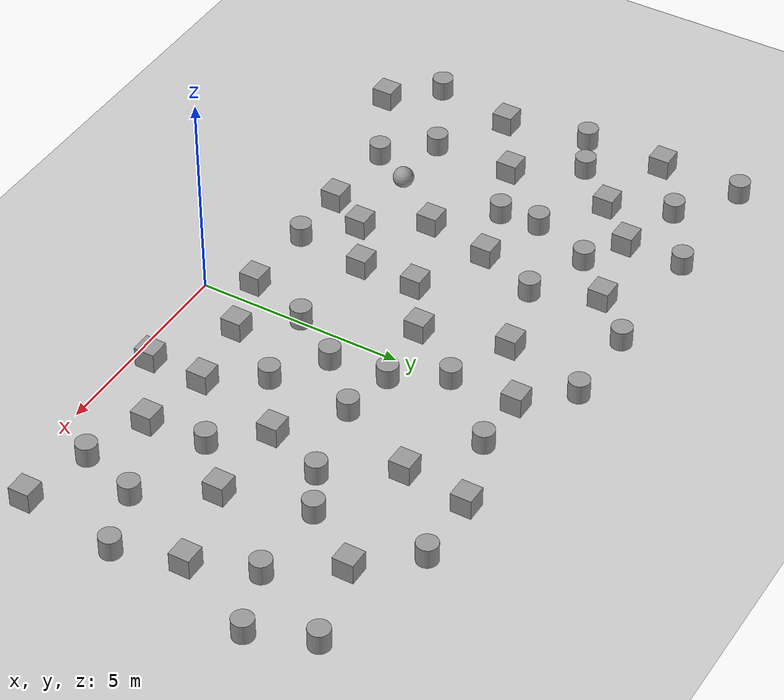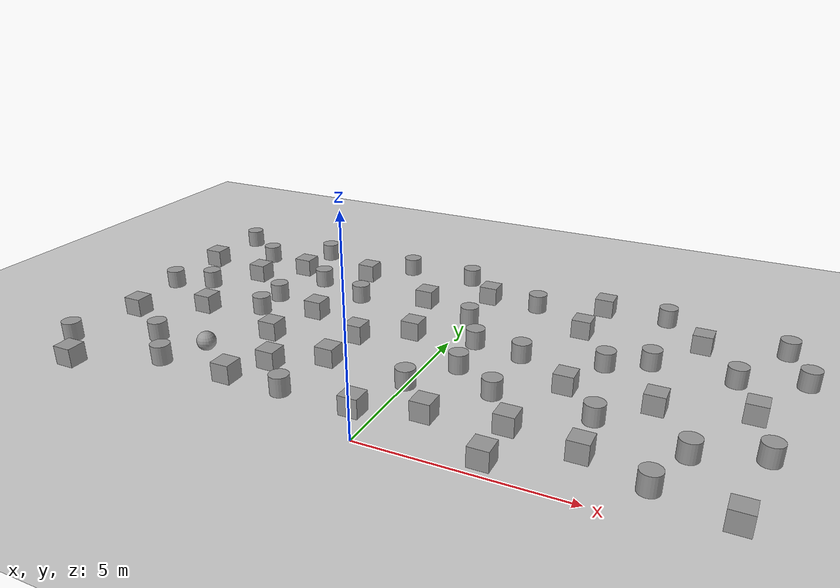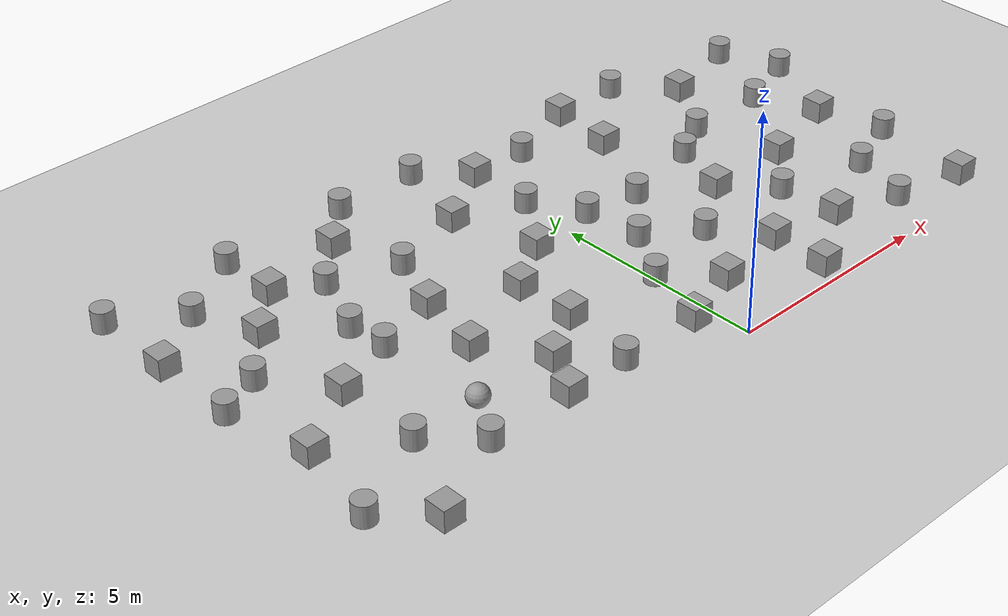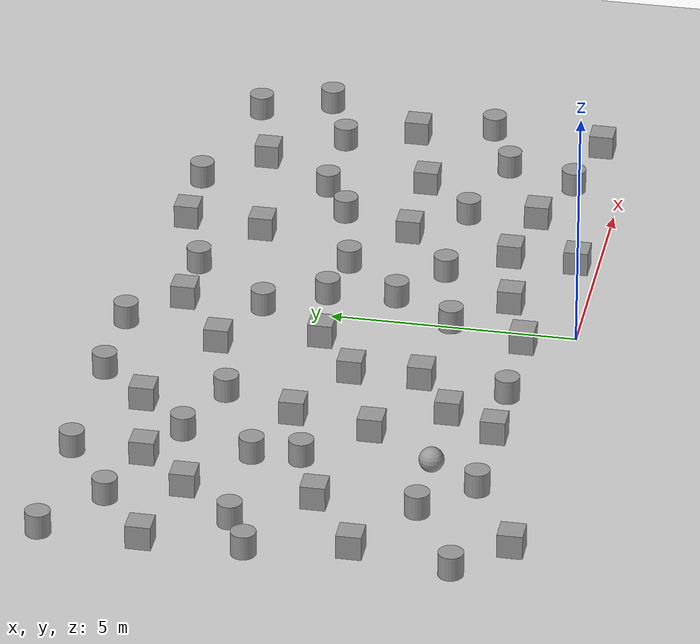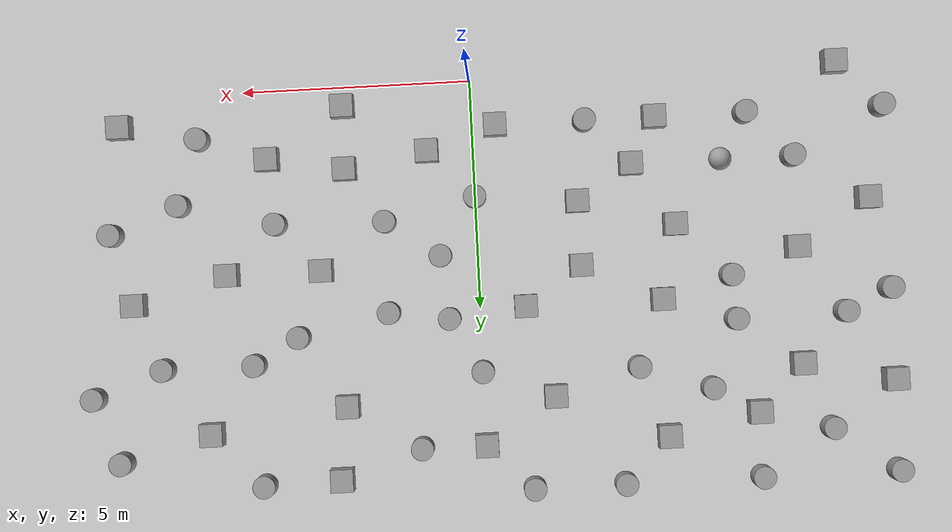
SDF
<sdf version="1.4">
 <world name="default">
  <model name="ground_plane">
   <static>1</static>
   <link name="link">
    <collision name="collision">
     <geometry><plane><normal>0 0 1</normal><size>100 100</size></plane></geometry>
     <surface><friction><ode><mu>100</mu><mu2>50</mu2></ode></friction></surface>
    </collision>
    <visual name="visual">
     <cast_shadows>0</cast_shadows>
     <geometry><plane><normal>0 0 1</normal><size>100 100</size></plane></geometry>
     <material>
      <script><uri>file://media/materials/scripts/gazebo.material</uri><name>Gazebo/Grey</name></script>
     </material>
    </visual>
    <velocity_decay><linear>0</linear><angular>0</angular></velocity_decay>
   </link>
  </model>
  <model name="unit_cylinder_2">
   <pose>-6 1 0.25 0 -0 0</pose>
   <link name="link">
    <inertial>
     <mass>1</mass>
     <inertia><ixx>1</ixx><ixy>0</ixy><ixz>0</ixz><iyy>1</iyy><iyz>0</iyz><izz>1</izz></inertia>
    </inertial>
    <collision name="collision">
     <geometry><cylinder><radius>0.25</radius><length>0.5</length></cylinder></geometry>
    </collision>
    <visual name="visual">
     <geometry><cylinder><radius>0.25</radius><length>0.5</length></cylinder></geometry>
     <material>
      <script><uri>file://media/materials/scripts/gazebo.material</uri><name>Gazebo/Grey</name></script>
     </material>
    </visual>
    <velocity_decay><linear>0</linear><angular>0</angular></velocity_decay>
   </link>
   <static>0</static>
  </model>
  <model name="unit_cylinder_3">
   <pose>5 6 0.25 0 -0 0</pose>
   <link name="link">
    <inertial>
     <mass>1</mass>
     <inertia><ixx>1</ixx><ixy>0</ixy><ixz>0</ixz><iyy>1</iyy><iyz>0</iyz><izz>1</izz></inertia>
    </inertial>
    <collision name="collision">
     <geometry><cylinder><radius>0.25</radius><length>0.5</length></cylinder></geometry>
    </collision>
    <visual name="visual">
     <geometry><cylinder><radius>0.25</radius><length>0.5</length></cylinder></geometry>
     <material>
      <script><uri>file://media/materials/scripts/gazebo.material</uri><name>Gazebo/Grey</name></script>
     </material>
    </visual>
    <velocity_decay><linear>0</linear><angular>0</angular></velocity_decay>
   </link>
   <static>0</static>
  </model>
  <model name="unit_cylinder_4">
   <pose>-7.58549 8 0.25 0 -0 0</pose>
   <link name="link">
    <inertial>
     <mass>1</mass>
     <inertia><ixx>1</ixx><ixy>0</ixy><ixz>0</ixz><iyy>1</iyy><iyz>0</iyz><izz>1</izz></inertia>
    </inertial>
    <collision name="collision">
     <geometry><cylinder><radius>0.25</radius><length>0.5</length></cylinder></geometry>
    </collision>
    <visual name="visual">
     <geometry><cylinder><radius>0.25</radius><length>0.5</length></cylinder></geometry>
     <material>
      <script><uri>file://media/materials/scripts/gazebo.material</uri><name>Gazebo/Grey</name></script>
     </material>
    </visual>
    <velocity_decay><linear>0</linear><angular>0</angular></velocity_decay>
   </link>
   <static>0</static>
  </model>
  <model name="unit_cylinder_8">
   <pose>-5 7 0.25 0 -0 0</pose>
   <link name="link">
    <inertial>
     <mass>1</mass>
     <inertia><ixx>1</ixx><ixy>0</ixy><ixz>0</ixz><iyy>1</iyy><iyz>0</iyz><izz>1</izz></inertia>
    </inertial>
    <collision name="collision">
     <geometry><cylinder><radius>0.25</radius><length>0.5</length></cylinder></geometry>
    </collision>
    <visual name="visual">
     <geometry><cylinder><radius>0.25</radius><length>0.5</length></cylinder></geometry>
     <material>
      <script><uri>file://media/materials/scripts/gazebo.material</uri><name>Gazebo/Grey</name></script>
     </material>
    </visual>
    <velocity_decay><linear>0</linear><angular>0</angular></velocity_decay>
   </link>
   <static>0</static>
  </model>
  <model name="unit_cylinder_9">
   <pose>1.413 8 0.25 0 -0 0</pose>
   <link name="link">
    <inertial>
     <mass>1</mass>
     <inertia><ixx>1</ixx><ixy>0</ixy><ixz>0</ixz><iyy>1</iyy><iyz>0</iyz><izz>1</izz></inertia>
    </inertial>
    <collision name="collision">
     <geometry><cylinder><radius>0.25</radius><length>0.5</length></cylinder></geometry>
    </collision>
    <visual name="visual">
     <geometry><cylinder><radius>0.25</radius><length>0.5</length></cylinder></geometry>
     <material>
      <script><uri>file://media/materials/scripts/gazebo.material</uri><name>Gazebo/Grey</name></script>
     </material>
    </visual>
    <velocity_decay><linear>0</linear><angular>0</angular></velocity_decay>
   </link>
   <static>0</static>
  </model>
  <model name="unit_cylinder_10">
   <pose>8 8 0.25 0 -0 0</pose>
   <link name="link">
    <inertial>
     <mass>1</mass>
     <inertia><ixx>1</ixx><ixy>0</ixy><ixz>0</ixz><iyy>1</iyy><iyz>0</iyz><izz>1</izz></inertia>
    </inertial>
    <collision name="collision">
     <geometry><cylinder><radius>0.25</radius><length>0.5</length></cylinder></geometry>
    </collision>
    <visual name="visual">
     <geometry><cylinder><radius>0.25</radius><length>0.5</length></cylinder></geometry>
     <material>
      <script><uri>file://media/materials/scripts/gazebo.material</uri><name>Gazebo/Grey</name></script>
     </material>
    </visual>
    <velocity_decay><linear>0</linear><angular>0</angular></velocity_decay>
   </link>
   <static>0</static>
  </model>
  <model name="unit_box_3">
   <pose>5.50427 4 0.249999 1e-06 2e-06 -3e-06</pose>
   <link name="link">
    <inertial>
     <mass>1</mass>
     <inertia><ixx>1</ixx><ixy>0</ixy><ixz>0</ixz><iyy>1</iyy><iyz>0</iyz><izz>1</izz></inertia>
    </inertial>
    <collision name="collision"><geometry><box><size>0.5 0.5 0.5</size></box></geometry></collision>
    <visual name="visual">
     <geometry><box><size>0.5 0.5 0.5</size></box></geometry>
     <material>
      <script><uri>file://media/materials/scripts/gazebo.material</uri><name>Gazebo/Grey</name></script>
     </material>
    </visual>
    <velocity_decay><linear>0</linear><angular>0</angular></velocity_decay>
   </link>
   <static>0</static>
  </model>
  <model name="unit_box_4">
   <pose>-2.23419 2.75958 0.25 -1e-06 1e-06 1e-06</pose>
   <link name="link">
    <inertial>
     <mass>1</mass>
     <inertia><ixx>1</ixx><ixy>0</ixy><ixz>0</ixz><iyy>1</iyy><iyz>0</iyz><izz>1</izz></inertia>
    </inertial>
    <collision name="collision"><geometry><box><size>0.5 0.5 0.5</size></box></geometry></collision>
    <visual name="visual">
     <geometry><box><size>0.5 0.5 0.5</size></box></geometry>
     <material>
      <script><uri>file://media/materials/scripts/gazebo.material</uri><name>Gazebo/Grey</name></script>
     </material>
    </visual>
    <velocity_decay><linear>0</linear><angular>0</angular></velocity_decay>
   </link>
   <static>0</static>
  </model>
  <model name="unit_box_5">
   <pose>-7 4 0.249999 1e-06 2e-06 -3e-06</pose>
   <link name="link">
    <inertial>
     <mass>1</mass>
     <inertia><ixx>1</ixx><ixy>0</ixy><ixz>0</ixz><iyy>1</iyy><iyz>0</iyz><izz>1</izz></inertia>
    </inertial>
    <collision name="collision"><geometry><box><size>0.5 0.5 0.5</size></box></geometry></collision>
    <visual name="visual">
     <geometry><box><size>0.5 0.5 0.5</size></box></geometry>
     <material>
      <script><uri>file://media/materials/scripts/gazebo.material</uri><name>Gazebo/Grey</name></script>
     </material>
    </visual>
    <velocity_decay><linear>0</linear><angular>0</angular></velocity_decay>
   </link>
   <static>0</static>
  </model>
  <model name="unit_box_6">
   <pose>-1.55694 7 0.249999 -2e-06 -1e-06 1e-06</pose>
   <link name="link">
    <inertial>
     <mass>1</mass>
     <inertia><ixx>1</ixx><ixy>0</ixy><ixz>0</ixz><iyy>1</iyy><iyz>0</iyz><izz>1</izz></inertia>
    </inertial>
    <collision name="collision"><geometry><box><size>0.5 0.5 0.5</size></box></geometry></collision>
    <visual name="visual">
     <geometry><box><size>0.5 0.5 0.5</size></box></geometry>
     <material>
      <script><uri>file://media/materials/scripts/gazebo.material</uri><name>Gazebo/Grey</name></script>
     </material>
    </visual>
    <velocity_decay><linear>0</linear><angular>0</angular></velocity_decay>
   </link>
   <static>0</static>
  </model>
  <model name="unit_box_7">
   <pose>-4 5 0.249999 -2e-06 8.07794e-28 1e-06</pose>
   <link name="link">
    <inertial>
     <mass>1</mass>
     <inertia><ixx>1</ixx><ixy>0</ixy><ixz>0</ixz><iyy>1</iyy><iyz>0</iyz><izz>1</izz></inertia>
    </inertial>
    <collision name="collision"><geometry><box><size>0.5 0.5 0.5</size></box></geometry></collision>
    <visual name="visual">
     <geometry><box><size>0.5 0.5 0.5</size></box></geometry>
     <material>
      <script><uri>file://media/materials/scripts/gazebo.material</uri><name>Gazebo/Grey</name></script>
     </material>
    </visual>
    <velocity_decay><linear>0</linear><angular>0</angular></velocity_decay>
   </link>
   <static>0</static>
  </model>
  <model name="unit_cylinder_13">
   <pose>8 3 0.25 0 -0 0</pose>
   <link name="link">
    <inertial>
     <mass>1</mass>
     <inertia><ixx>1</ixx><ixy>0</ixy><ixz>0</ixz><iyy>1</iyy><iyz>0</iyz><izz>1</izz></inertia>
    </inertial>
    <collision name="collision">
     <geometry><cylinder><radius>0.25</radius><length>0.5</length></cylinder></geometry>
    </collision>
    <visual name="visual">
     <geometry><cylinder><radius>0.25</radius><length>0.5</length></cylinder></geometry>
     <material>
      <script><uri>file://media/materials/scripts/gazebo.material</uri><name>Gazebo/Grey</name></script>
     </material>
    </visual>
    <velocity_decay><linear>0</linear><angular>0</angular></velocity_decay>
   </link>
   <static>0</static>
  </model>
  <model name="unit_cylinder_14">
   <pose>2 5 0.249999 -0 -0 -0</pose>
   <link name="link">
    <inertial>
     <mass>1</mass>
     <inertia><ixx>1</ixx><ixy>0</ixy><ixz>0</ixz><iyy>1</iyy><iyz>0</iyz><izz>1</izz></inertia>
    </inertial>
    <collision name="collision">
     <geometry><cylinder><radius>0.25</radius><length>0.5</length></cylinder></geometry>
    </collision>
    <visual name="visual">
     <geometry><cylinder><radius>0.25</radius><length>0.5</length></cylinder></geometry>
     <material>
      <script><uri>file://media/materials/scripts/gazebo.material</uri><name>Gazebo/Grey</name></script>
     </material>
    </visual>
    <velocity_decay><linear>0</linear><angular>0</angular></velocity_decay>
   </link>
   <static>0</static>
  </model>
  <model name="unit_cylinder_15">
   <pose>0 2.5525 0.25 0 -0 0</pose>
   <link name="link">
    <inertial>
     <mass>1</mass>
     <inertia><ixx>1</ixx><ixy>0</ixy><ixz>0</ixz><iyy>1</iyy><iyz>0</iyz><izz>1</izz></inertia>
    </inertial>
    <collision name="collision">
     <geometry><cylinder><radius>0.25</radius><length>0.5</length></cylinder></geometry>
    </collision>
    <visual name="visual">
     <geometry><cylinder><radius>0.25</radius><length>0.5</length></cylinder></geometry>
     <material>
      <script><uri>file://media/materials/scripts/gazebo.material</uri><name>Gazebo/Grey</name></script>
     </material>
    </visual>
    <velocity_decay><linear>0</linear><angular>0</angular></velocity_decay>
   </link>
   <static>0</static>
  </model>
  <model name="unit_box_12">
   <pose>2.81797 1.80018 0.249999 -1e-06 -1e-06 0</pose>
   <link name="link">
    <inertial>
     <mass>1</mass>
     <inertia><ixx>1</ixx><ixy>0</ixy><ixz>0</ixz><iyy>1</iyy><iyz>0</iyz><izz>1</izz></inertia>
    </inertial>
    <collision name="collision"><geometry><box><size>0.5 0.5 0.5</size></box></geometry></collision>
    <visual name="visual">
     <geometry><box><size>0.5 0.5 0.5</size></box></geometry>
     <material>
      <script><uri>file://media/materials/scripts/gazebo.material</uri><name>Gazebo/Grey</name></script>
     </material>
    </visual>
    <velocity_decay><linear>0</linear><angular>0</angular></velocity_decay>
   </link>
   <static>0</static>
  </model>
  <model name="unit_box_14">
   <pose>-8 1e-06 0.249999 -1e-06 2e-06 1e-06</pose>
   <link name="link">
    <inertial>
     <mass>1</mass>
     <inertia><ixx>1</ixx><ixy>0</ixy><ixz>0</ixz><iyy>1</iyy><iyz>0</iyz><izz>1</izz></inertia>
    </inertial>
    <collision name="collision"><geometry><box><size>0.5 0.5 0.5</size></box></geometry></collision>
    <visual name="visual">
     <geometry><box><size>0.5 0.5 0.5</size></box></geometry>
     <material>
      <script><uri>file://media/materials/scripts/gazebo.material</uri><name>Gazebo/Grey</name></script>
     </material>
    </visual>
    <velocity_decay><linear>0</linear><angular>0</angular></velocity_decay>
   </link>
   <static>0</static>
  </model>
  <model name="unit_cylinder_21">
   <pose>6 1 0.25 0 -0 0</pose>
   <link name="link">
    <inertial>
     <mass>1</mass>
     <inertia><ixx>1</ixx><ixy>0</ixy><ixz>0</ixz><iyy>1</iyy><iyz>0</iyz><izz>1</izz></inertia>
    </inertial>
    <collision name="collision">
     <geometry><cylinder><radius>0.25</radius><length>0.5</length></cylinder></geometry>
    </collision>
    <visual name="visual">
     <geometry><cylinder><radius>0.25</radius><length>0.5</length></cylinder></geometry>
     <material>
      <script><uri>file://media/materials/scripts/gazebo.material</uri><name>Gazebo/Grey</name></script>
     </material>
    </visual>
    <velocity_decay><linear>0</linear><angular>0</angular></velocity_decay>
   </link>
   <static>0</static>
  </model>
  <model name="unit_box_1_0">
   <pose>-0.518956 0.999999 0.249999 1e-06 -2e-06 -3e-06</pose>
   <link name="link">
    <inertial>
     <mass>1</mass>
     <inertia><ixx>1</ixx><ixy>0</ixy><ixz>0</ixz><iyy>1</iyy><iyz>0</iyz><izz>1</izz></inertia>
    </inertial>
    <collision name="collision"><geometry><box><size>0.5 0.5 0.5</size></box></geometry></collision>
    <visual name="visual">
     <geometry><box><size>0.5 0.5 0.5</size></box></geometry>
     <material>
      <script><uri>file://media/materials/scripts/gazebo.material</uri><name>Gazebo/Grey</name></script>
     </material>
    </visual>
    <velocity_decay><linear>0</linear><angular>0</angular></velocity_decay>
   </link>
   <static>0</static>
  </model>
  <model name="unit_box_2_0">
   <pose>1 1.49539 0.249999 2e-06 1e-06 8.07794e-28</pose>
   <link name="link">
    <inertial>
     <mass>1</mass>
     <inertia><ixx>1</ixx><ixy>0</ixy><ixz>0</ixz><iyy>1</iyy><iyz>0</iyz><izz>1</izz></inertia>
    </inertial>
    <collision name="collision"><geometry><box><size>0.5 0.5 0.5</size></box></geometry></collision>
    <visual name="visual">
     <geometry><box><size>0.5 0.5 0.5</size></box></geometry>
     <material>
      <script><uri>file://media/materials/scripts/gazebo.material</uri><name>Gazebo/Grey</name></script>
     </material>
    </visual>
    <velocity_decay><linear>0</linear><angular>0</angular></velocity_decay>
   </link>
   <static>0</static>
  </model>
  <model name="unit_cylinder_4_0">
   <pose>-2.47034 1 0.25 0 -0 0</pose>
   <link name="link">
    <inertial>
     <mass>1</mass>
     <inertia><ixx>1</ixx><ixy>0</ixy><ixz>0</ixz><iyy>1</iyy><iyz>0</iyz><izz>1</izz></inertia>
    </inertial>
    <collision name="collision">
     <geometry><cylinder><radius>0.25</radius><length>0.5</length></cylinder></geometry>
    </collision>
    <visual name="visual">
     <geometry><cylinder><radius>0.25</radius><length>0.5</length></cylinder></geometry>
     <material>
      <script><uri>file://media/materials/scripts/gazebo.material</uri><name>Gazebo/Grey</name></script>
     </material>
    </visual>
    <velocity_decay><linear>0</linear><angular>0</angular></velocity_decay>
   </link>
   <static>0</static>
  </model>
  <model name="unit_box_3_0">
   <pose>-4.3515 3.37188 0.249999 -2e-06 1e-06 2e-06</pose>
   <link name="link">
    <inertial>
     <mass>1</mass>
     <inertia><ixx>1</ixx><ixy>0</ixy><ixz>0</ixz><iyy>1</iyy><iyz>0</iyz><izz>1</izz></inertia>
    </inertial>
    <collision name="collision"><geometry><box><size>0.5 0.5 0.5</size></box></geometry></collision>
    <visual name="visual">
     <geometry><box><size>0.5 0.5 0.5</size></box></geometry>
     <material>
      <script><uri>file://media/materials/scripts/gazebo.material</uri><name>Gazebo/Grey</name></script>
     </material>
    </visual>
    <velocity_decay><linear>0</linear><angular>0</angular></velocity_decay>
   </link>
   <static>0</static>
  </model>
  <model name="unit_cylinder_5_0">
   <pose>-7 2 0.25 0 -0 0</pose>
   <link name="link">
    <inertial>
     <mass>1</mass>
     <inertia><ixx>1</ixx><ixy>0</ixy><ixz>0</ixz><iyy>1</iyy><iyz>0</iyz><izz>1</izz></inertia>
    </inertial>
    <collision name="collision">
     <geometry><cylinder><radius>0.25</radius><length>0.5</length></cylinder></geometry>
    </collision>
    <visual name="visual">
     <geometry><cylinder><radius>0.25</radius><length>0.5</length></cylinder></geometry>
     <material>
      <script><uri>file://media/materials/scripts/gazebo.material</uri><name>Gazebo/Grey</name></script>
     </material>
    </visual>
    <velocity_decay><linear>0</linear><angular>0</angular></velocity_decay>
   </link>
   <static>0</static>
  </model>
  <model name="unit_box_6_0">
   <pose>-4 0.999999 0.25 1e-06 -1e-06 -1e-06</pose>
   <link name="link">
    <inertial>
     <mass>1</mass>
     <inertia><ixx>1</ixx><ixy>0</ixy><ixz>0</ixz><iyy>1</iyy><iyz>0</iyz><izz>1</izz></inertia>
    </inertial>
    <collision name="collision"><geometry><box><size>0.5 0.5 0.5</size></box></geometry></collision>
    <visual name="visual">
     <geometry><box><size>0.5 0.5 0.5</size></box></geometry>
     <material>
      <script><uri>file://media/materials/scripts/gazebo.material</uri><name>Gazebo/Grey</name></script>
     </material>
    </visual>
    <velocity_decay><linear>0</linear><angular>0</angular></velocity_decay>
   </link>
   <static>0</static>
  </model>
  <model name="unit_cylinder_7_0">
   <pose>-5.59398 5.514 0.25 0 -0 0</pose>
   <link name="link">
    <inertial>
     <mass>1</mass>
     <inertia><ixx>1</ixx><ixy>0</ixy><ixz>0</ixz><iyy>1</iyy><iyz>0</iyz><izz>1</izz></inertia>
    </inertial>
    <collision name="collision">
     <geometry><cylinder><radius>0.25</radius><length>0.5</length></cylinder></geometry>
    </collision>
    <visual name="visual">
     <geometry><cylinder><radius>0.25</radius><length>0.5</length></cylinder></geometry>
     <material>
      <script><uri>file://media/materials/scripts/gazebo.material</uri><name>Gazebo/Grey</name></script>
     </material>
    </visual>
    <velocity_decay><linear>0</linear><angular>0</angular></velocity_decay>
   </link>
   <static>0</static>
  </model>
  <model name="unit_box_7_0">
   <pose>-7 6.55811 0.249999 -2e-06 1e-06 1e-06</pose>
   <link name="link">
    <inertial>
     <mass>1</mass>
     <inertia><ixx>1</ixx><ixy>0</ixy><ixz>0</ixz><iyy>1</iyy><iyz>0</iyz><izz>1</izz></inertia>
    </inertial>
    <collision name="collision"><geometry><box><size>0.5 0.5 0.5</size></box></geometry></collision>
    <visual name="visual">
     <geometry><box><size>0.5 0.5 0.5</size></box></geometry>
     <material>
      <script><uri>file://media/materials/scripts/gazebo.material</uri><name>Gazebo/Grey</name></script>
     </material>
    </visual>
    <velocity_decay><linear>0</linear><angular>0</angular></velocity_decay>
   </link>
   <static>0</static>
  </model>
  <model name="unit_cylinder_8_0">
   <pose>-8 5.46484 0.25 0 -0 0</pose>
   <link name="link">
    <inertial>
     <mass>1</mass>
     <inertia><ixx>1</ixx><ixy>0</ixy><ixz>0</ixz><iyy>1</iyy><iyz>0</iyz><izz>1</izz></inertia>
    </inertial>
    <collision name="collision">
     <geometry><cylinder><radius>0.25</radius><length>0.5</length></cylinder></geometry>
    </collision>
    <visual name="visual">
     <geometry><cylinder><radius>0.25</radius><length>0.5</length></cylinder></geometry>
     <material>
      <script><uri>file://media/materials/scripts/gazebo.material</uri><name>Gazebo/Grey</name></script>
     </material>
    </visual>
    <velocity_decay><linear>0</linear><angular>0</angular></velocity_decay>
   </link>
   <static>0</static>
  </model>
  <model name="unit_box_8_0">
   <pose>-9 7 0.249999 -1e-06 2e-06 1e-06</pose>
   <link name="link">
    <inertial>
     <mass>1</mass>
     <inertia><ixx>1</ixx><ixy>0</ixy><ixz>0</ixz><iyy>1</iyy><iyz>0</iyz><izz>1</izz></inertia>
    </inertial>
    <collision name="collision"><geometry><box><size>0.5 0.5 0.5</size></box></geometry></collision>
    <visual name="visual">
     <geometry><box><size>0.5 0.5 0.5</size></box></geometry>
     <material>
      <script><uri>file://media/materials/scripts/gazebo.material</uri><name>Gazebo/Grey</name></script>
     </material>
    </visual>
    <velocity_decay><linear>0</linear><angular>0</angular></velocity_decay>
   </link>
   <static>0</static>
  </model>
  <model name="unit_cylinder_9_0">
   <pose>-9 5 0.25 0 -0 0</pose>
   <link name="link">
    <inertial>
     <mass>1</mass>
     <inertia><ixx>1</ixx><ixy>0</ixy><ixz>0</ixz><iyy>1</iyy><iyz>0</iyz><izz>1</izz></inertia>
    </inertial>
    <collision name="collision">
     <geometry><cylinder><radius>0.25</radius><length>0.5</length></cylinder></geometry>
    </collision>
    <visual name="visual">
     <geometry><cylinder><radius>0.25</radius><length>0.5</length></cylinder></geometry>
     <material>
      <script><uri>file://media/materials/scripts/gazebo.material</uri><name>Gazebo/Grey</name></script>
     </material>
    </visual>
    <velocity_decay><linear>0</linear><angular>0</angular></velocity_decay>
   </link>
   <static>0</static>
  </model>
  <model name="unit_box_9_0">
   <pose>-8.59861 3 0.249999 1e-06 -2e-06 -3e-06</pose>
   <link name="link">
    <inertial>
     <mass>1</mass>
     <inertia><ixx>1</ixx><ixy>0</ixy><ixz>0</ixz><iyy>1</iyy><iyz>0</iyz><izz>1</izz></inertia>
    </inertial>
    <collision name="collision"><geometry><box><size>0.5 0.5 0.5</size></box></geometry></collision>
    <visual name="visual">
     <geometry><box><size>0.5 0.5 0.5</size></box></geometry>
     <material>
      <script><uri>file://media/materials/scripts/gazebo.material</uri><name>Gazebo/Grey</name></script>
     </material>
    </visual>
    <velocity_decay><linear>0</linear><angular>0</angular></velocity_decay>
   </link>
   <static>0</static>
  </model>
  <model name="unit_cylinder_10_0">
   <pose>-6 9 0.25 0 -0 0</pose>
   <link name="link">
    <inertial>
     <mass>1</mass>
     <inertia><ixx>1</ixx><ixy>0</ixy><ixz>0</ixz><iyy>1</iyy><iyz>0</iyz><izz>1</izz></inertia>
    </inertial>
    <collision name="collision">
     <geometry><cylinder><radius>0.25</radius><length>0.5</length></cylinder></geometry>
    </collision>
    <visual name="visual">
     <geometry><cylinder><radius>0.25</radius><length>0.5</length></cylinder></geometry>
     <material>
      <script><uri>file://media/materials/scripts/gazebo.material</uri><name>Gazebo/Grey</name></script>
     </material>
    </visual>
    <velocity_decay><linear>0</linear><angular>0</angular></velocity_decay>
   </link>
   <static>0</static>
  </model>
  <model name="unit_cylinder_11_0">
   <pose>-9 9 0.25 0 -0 0</pose>
   <link name="link">
    <inertial>
     <mass>1</mass>
     <inertia><ixx>1</ixx><ixy>0</ixy><ixz>0</ixz><iyy>1</iyy><iyz>0</iyz><izz>1</izz></inertia>
    </inertial>
    <collision name="collision">
     <geometry><cylinder><radius>0.25</radius><length>0.5</length></cylinder></geometry>
    </collision>
    <visual name="visual">
     <geometry><cylinder><radius>0.25</radius><length>0.5</length></cylinder></geometry>
     <material>
      <script><uri>file://media/materials/scripts/gazebo.material</uri><name>Gazebo/Grey</name></script>
     </material>
    </visual>
    <velocity_decay><linear>0</linear><angular>0</angular></velocity_decay>
   </link>
   <static>0</static>
  </model>
  <model name="unit_box_10_0">
   <pose>-4 8 0.249999 -2e-06 1e-06 1e-06</pose>
   <link name="link">
    <inertial>
     <mass>1</mass>
     <inertia><ixx>1</ixx><ixy>0</ixy><ixz>0</ixz><iyy>1</iyy><iyz>0</iyz><izz>1</izz></inertia>
    </inertial>
    <collision name="collision"><geometry><box><size>0.5 0.5 0.5</size></box></geometry></collision>
    <visual name="visual">
     <geometry><box><size>0.5 0.5 0.5</size></box></geometry>
     <material>
      <script><uri>file://media/materials/scripts/gazebo.material</uri><name>Gazebo/Grey</name></script>
     </material>
    </visual>
    <velocity_decay><linear>0</linear><angular>0</angular></velocity_decay>
   </link>
   <static>0</static>
  </model>
  <model name="unit_cylinder_12_0">
   <pose>-3 9 0.25 0 -0 0</pose>
   <link name="link">
    <inertial>
     <mass>1</mass>
     <inertia><ixx>1</ixx><ixy>0</ixy><ixz>0</ixz><iyy>1</iyy><iyz>0</iyz><izz>1</izz></inertia>
    </inertial>
    <collision name="collision">
     <geometry><cylinder><radius>0.25</radius><length>0.5</length></cylinder></geometry>
    </collision>
    <visual name="visual">
     <geometry><cylinder><radius>0.25</radius><length>0.5</length></cylinder></geometry>
     <material>
      <script><uri>file://media/materials/scripts/gazebo.material</uri><name>Gazebo/Grey</name></script>
     </material>
    </visual>
    <velocity_decay><linear>0</linear><angular>0</angular></velocity_decay>
   </link>
   <static>0</static>
  </model>
  <model name="unit_box_11_0">
   <pose>-1 5 0.25 0 0 -2e-06</pose>
   <link name="link">
    <inertial>
     <mass>1</mass>
     <inertia><ixx>1</ixx><ixy>0</ixy><ixz>0</ixz><iyy>1</iyy><iyz>0</iyz><izz>1</izz></inertia>
    </inertial>
    <collision name="collision"><geometry><box><size>0.5 0.5 0.5</size></box></geometry></collision>
    <visual name="visual">
     <geometry><box><size>0.5 0.5 0.5</size></box></geometry>
     <material>
      <script><uri>file://media/materials/scripts/gazebo.material</uri><name>Gazebo/Grey</name></script>
     </material>
    </visual>
    <velocity_decay><linear>0</linear><angular>0</angular></velocity_decay>
   </link>
   <static>0</static>
  </model>
  <model name="unit_cylinder_13_0">
   <pose>-1 9 0.25 0 -0 0</pose>
   <link name="link">
    <inertial>
     <mass>1</mass>
     <inertia><ixx>1</ixx><ixy>0</ixy><ixz>0</ixz><iyy>1</iyy><iyz>0</iyz><izz>1</izz></inertia>
    </inertial>
    <collision name="collision">
     <geometry><cylinder><radius>0.25</radius><length>0.5</length></cylinder></geometry>
    </collision>
    <visual name="visual">
     <geometry><cylinder><radius>0.25</radius><length>0.5</length></cylinder></geometry>
     <material>
      <script><uri>file://media/materials/scripts/gazebo.material</uri><name>Gazebo/Grey</name></script>
     </material>
    </visual>
    <velocity_decay><linear>0</linear><angular>0</angular></velocity_decay>
   </link>
   <static>0</static>
  </model>
  <model name="unit_box_12_0">
   <pose>3.20226 8.59564 0.249999 1e-06 2e-06 8.07794e-28</pose>
   <link name="link">
    <inertial>
     <mass>1</mass>
     <inertia><ixx>1</ixx><ixy>0</ixy><ixz>0</ixz><iyy>1</iyy><iyz>0</iyz><izz>1</izz></inertia>
    </inertial>
    <collision name="collision"><geometry><box><size>0.5 0.5 0.5</size></box></geometry></collision>
    <visual name="visual">
     <geometry><box><size>0.5 0.5 0.5</size></box></geometry>
     <material>
      <script><uri>file://media/materials/scripts/gazebo.material</uri><name>Gazebo/Grey</name></script>
     </material>
    </visual>
    <velocity_decay><linear>0</linear><angular>0</angular></velocity_decay>
   </link>
   <static>0</static>
  </model>
  <model name="unit_cylinder_14_0">
   <pose>4.89793 8.64949 0.25 0 -0 0</pose>
   <link name="link">
    <inertial>
     <mass>1</mass>
     <inertia><ixx>1</ixx><ixy>0</ixy><ixz>0</ixz><iyy>1</iyy><iyz>0</iyz><izz>1</izz></inertia>
    </inertial>
    <collision name="collision">
     <geometry><cylinder><radius>0.25</radius><length>0.5</length></cylinder></geometry>
    </collision>
    <visual name="visual">
     <geometry><cylinder><radius>0.25</radius><length>0.5</length></cylinder></geometry>
     <material>
      <script><uri>file://media/materials/scripts/gazebo.material</uri><name>Gazebo/Grey</name></script>
     </material>
    </visual>
    <velocity_decay><linear>0</linear><angular>0</angular></velocity_decay>
   </link>
   <static>0</static>
  </model>
  <model name="unit_box_13_0">
   <pose>3 7 0.249999 -1e-06 -2e-06 1e-06</pose>
   <link name="link">
    <inertial>
     <mass>1</mass>
     <inertia><ixx>1</ixx><ixy>0</ixy><ixz>0</ixz><iyy>1</iyy><iyz>0</iyz><izz>1</izz></inertia>
    </inertial>
    <collision name="collision"><geometry><box><size>0.5 0.5 0.5</size></box></geometry></collision>
    <visual name="visual">
     <geometry><box><size>0.5 0.5 0.5</size></box></geometry>
     <material>
      <script><uri>file://media/materials/scripts/gazebo.material</uri><name>Gazebo/Grey</name></script>
     </material>
    </visual>
    <velocity_decay><linear>0</linear><angular>0</angular></velocity_decay>
   </link>
   <static>0</static>
  </model>
  <model name="unit_cylinder_15_0">
   <pose>0.007662 6.39032 0.249991 0 -0 0</pose>
   <link name="link">
    <inertial>
     <mass>1</mass>
     <inertia><ixx>1</ixx><ixy>0</ixy><ixz>0</ixz><iyy>1</iyy><iyz>0</iyz><izz>1</izz></inertia>
    </inertial>
    <collision name="collision">
     <geometry><cylinder><radius>0.25</radius><length>0.5</length></cylinder></geometry>
    </collision>
    <visual name="visual">
     <geometry><cylinder><radius>0.25</radius><length>0.5</length></cylinder></geometry>
     <material>
      <script><uri>file://media/materials/scripts/gazebo.material</uri><name>Gazebo/Grey</name></script>
     </material>
    </visual>
    <velocity_decay><linear>0</linear><angular>0</angular></velocity_decay>
   </link>
   <static>0</static>
  </model>
  <model name="unit_box_14_0">
   <pose>6 7.46069 0.249999 -2e-06 1e-06 3e-06</pose>
   <link name="link">
    <inertial>
     <mass>1</mass>
     <inertia><ixx>1</ixx><ixy>0</ixy><ixz>0</ixz><iyy>1</iyy><iyz>0</iyz><izz>1</izz></inertia>
    </inertial>
    <collision name="collision"><geometry><box><size>0.5 0.5 0.5</size></box></geometry></collision>
    <visual name="visual">
     <geometry><box><size>0.5 0.5 0.5</size></box></geometry>
     <material>
      <script><uri>file://media/materials/scripts/gazebo.material</uri><name>Gazebo/Grey</name></script>
     </material>
    </visual>
    <velocity_decay><linear>0</linear><angular>0</angular></velocity_decay>
   </link>
   <static>0</static>
  </model>
  <model name="unit_cylinder_16_0">
   <pose>2 3 0.25 0 -0 0</pose>
   <link name="link">
    <inertial>
     <mass>1</mass>
     <inertia><ixx>1</ixx><ixy>0</ixy><ixz>0</ixz><iyy>1</iyy><iyz>0</iyz><izz>1</izz></inertia>
    </inertial>
    <collision name="collision">
     <geometry><cylinder><radius>0.25</radius><length>0.5</length></cylinder></geometry>
    </collision>
    <visual name="visual">
     <geometry><cylinder><radius>0.25</radius><length>0.5</length></cylinder></geometry>
     <material>
      <script><uri>file://media/materials/scripts/gazebo.material</uri><name>Gazebo/Grey</name></script>
     </material>
    </visual>
    <velocity_decay><linear>0</linear><angular>0</angular></velocity_decay>
   </link>
   <static>0</static>
  </model>
  <model name="unit_box_16_0">
   <pose>2.79825 0.427417 0.25 -1e-06 1e-06 2e-06</pose>
   <link name="link">
    <inertial>
     <mass>1</mass>
     <inertia><ixx>1</ixx><ixy>0</ixy><ixz>0</ixz><iyy>1</iyy><iyz>0</iyz><izz>1</izz></inertia>
    </inertial>
    <collision name="collision"><geometry><box><size>0.5 0.5 0.5</size></box></geometry></collision>
    <visual name="visual">
     <geometry><box><size>0.5 0.5 0.5</size></box></geometry>
     <material>
      <script><uri>file://media/materials/scripts/gazebo.material</uri><name>Gazebo/Grey</name></script>
     </material>
    </visual>
    <velocity_decay><linear>0</linear><angular>0</angular></velocity_decay>
   </link>
   <static>0</static>
  </model>
  <model name="unit_cylinder_17_0">
   <pose>4.39855 2.93832 0.249991 0 -0 0</pose>
   <link name="link">
    <inertial>
     <mass>1</mass>
     <inertia><ixx>1</ixx><ixy>0</ixy><ixz>0</ixz><iyy>1</iyy><iyz>0</iyz><izz>1</izz></inertia>
    </inertial>
    <collision name="collision">
     <geometry><cylinder><radius>0.25</radius><length>0.5</length></cylinder></geometry>
    </collision>
    <visual name="visual">
     <geometry><cylinder><radius>0.25</radius><length>0.5</length></cylinder></geometry>
     <material>
      <script><uri>file://media/materials/scripts/gazebo.material</uri><name>Gazebo/Grey</name></script>
     </material>
    </visual>
    <velocity_decay><linear>0</linear><angular>0</angular></velocity_decay>
   </link>
   <static>0</static>
  </model>
  <model name="unit_box_17">
   <pose>3.4362 4 0.25 -2e-06 -0 -3e-06</pose>
   <link name="link">
    <inertial>
     <mass>1</mass>
     <inertia><ixx>1</ixx><ixy>0</ixy><ixz>0</ixz><iyy>1</iyy><iyz>0</iyz><izz>1</izz></inertia>
    </inertial>
    <collision name="collision"><geometry><box><size>0.5 0.5 0.5</size></box></geometry></collision>
    <visual name="visual">
     <geometry><box><size>0.5 0.5 0.5</size></box></geometry>
     <material>
      <script><uri>file://media/materials/scripts/gazebo.material</uri><name>Gazebo/Grey</name></script>
     </material>
    </visual>
    <velocity_decay><linear>0</linear><angular>0</angular></velocity_decay>
   </link>
   <static>0</static>
  </model>
  <model name="unit_cylinder_18_0">
   <pose>0.8137 3.80518 0.249991 0 -0 0</pose>
   <link name="link">
    <inertial>
     <mass>1</mass>
     <inertia><ixx>1</ixx><ixy>0</ixy><ixz>0</ixz><iyy>1</iyy><iyz>0</iyz><izz>1</izz></inertia>
    </inertial>
    <collision name="collision">
     <geometry><cylinder><radius>0.25</radius><length>0.5</length></cylinder></geometry>
    </collision>
    <visual name="visual">
     <geometry><cylinder><radius>0.25</radius><length>0.5</length></cylinder></geometry>
     <material>
      <script><uri>file://media/materials/scripts/gazebo.material</uri><name>Gazebo/Grey</name></script>
     </material>
    </visual>
    <velocity_decay><linear>0</linear><angular>0</angular></velocity_decay>
   </link>
   <static>0</static>
  </model>
  <model name="unit_cylinder_21_0">
   <pose>7 6 0.25 0 -0 0</pose>
   <link name="link">
    <inertial>
     <mass>1</mass>
     <inertia><ixx>1</ixx><ixy>0</ixy><ixz>0</ixz><iyy>1</iyy><iyz>0</iyz><izz>1</izz></inertia>
    </inertial>
    <collision name="collision">
     <geometry><cylinder><radius>0.25</radius><length>0.5</length></cylinder></geometry>
    </collision>
    <visual name="visual">
     <geometry><cylinder><radius>0.25</radius><length>0.5</length></cylinder></geometry>
     <material>
      <script><uri>file://media/materials/scripts/gazebo.material</uri><name>Gazebo/Grey</name></script>
     </material>
    </visual>
    <velocity_decay><linear>0</linear><angular>0</angular></velocity_decay>
   </link>
   <static>0</static>
  </model>
  <model name="unit_box_25">
   <pose>7.6868 0.654672 0.249999 -1e-06 2e-06 3e-06</pose>
   <link name="link">
    <inertial>
     <mass>1</mass>
     <inertia><ixx>1</ixx><ixy>0</ixy><ixz>0</ixz><iyy>1</iyy><iyz>0</iyz><izz>1</izz></inertia>
    </inertial>
    <collision name="collision"><geometry><box><size>0.5 0.5 0.5</size></box></geometry></collision>
    <visual name="visual">
     <geometry><box><size>0.5 0.5 0.5</size></box></geometry>
     <material>
      <script><uri>file://media/materials/scripts/gazebo.material</uri><name>Gazebo/Grey</name></script>
     </material>
    </visual>
    <velocity_decay><linear>0</linear><angular>0</angular></velocity_decay>
   </link>
   <static>0</static>
  </model>
  <model name="unit_box_3_1">
   <pose>-3.44149 2 0.249999 1e-06 -2e-06 -8.07794e-28</pose>
   <link name="link">
    <inertial>
     <mass>1</mass>
     <inertia><ixx>1</ixx><ixy>0</ixy><ixz>0</ixz><iyy>1</iyy><iyz>0</iyz><izz>1</izz></inertia>
    </inertial>
    <collision name="collision"><geometry><box><size>0.5 0.5 0.5</size></box></geometry></collision>
    <visual name="visual">
     <geometry><box><size>0.5 0.5 0.5</size></box></geometry>
     <material>
      <script><uri>file://media/materials/scripts/gazebo.material</uri><name>Gazebo/Grey</name></script>
     </material>
    </visual>
    <velocity_decay><linear>0</linear><angular>0</angular></velocity_decay>
   </link>
   <static>0</static>
  </model>
  <model name="unit_sphere_1">
   <pose>-5.40387 2 0.25 0 -0 0</pose>
   <link name="link">
    <inertial>
     <mass>1</mass>
     <inertia><ixx>1</ixx><ixy>0</ixy><ixz>0</ixz><iyy>1</iyy><iyz>0</iyz><izz>1</izz></inertia>
    </inertial>
    <collision name="collision"><geometry><sphere><radius>0.25</radius></sphere></geometry></collision>
    <visual name="visual">
     <geometry><sphere><radius>0.25</radius></sphere></geometry>
     <material>
      <script><uri>file://media/materials/scripts/gazebo.material</uri><name>Gazebo/Grey</name></script>
     </material>
    </visual>
    <velocity_decay><linear>0</linear><angular>0</angular></velocity_decay>
   </link>
   <static>0</static>
  </model>
  <model name="unit_box_4_1">
   <pose>-2.25192 4.1699 0.249999 2e-06 -1e-06 -1e-06</pose>
   <link name="link">
    <inertial>
     <mass>1</mass>
     <inertia><ixx>1</ixx><ixy>0</ixy><ixz>0</ixz><iyy>1</iyy><iyz>0</iyz><izz>1</izz></inertia>
    </inertial>
    <collision name="collision"><geometry><box><size>0.5 0.5 0.5</size></box></geometry></collision>
    <visual name="visual">
     <geometry><box><size>0.5 0.5 0.5</size></box></geometry>
     <material>
      <script><uri>file://media/materials/scripts/gazebo.material</uri><name>Gazebo/Grey</name></script>
     </material>
    </visual>
    <velocity_decay><linear>0</linear><angular>0</angular></velocity_decay>
   </link>
   <static>0</static>
  </model>
  <model name="unit_cylinder_3_1">
   <pose>-9 1 0.25 0 -0 0</pose>
   <link name="link">
    <inertial>
     <mass>1</mass>
     <inertia><ixx>1</ixx><ixy>0</ixy><ixz>0</ixz><iyy>1</iyy><iyz>0</iyz><izz>1</izz></inertia>
    </inertial>
    <collision name="collision">
     <geometry><cylinder><radius>0.25</radius><length>0.5</length></cylinder></geometry>
    </collision>
    <visual name="visual">
     <geometry><cylinder><radius>0.25</radius><length>0.5</length></cylinder></geometry>
     <material>
      <script><uri>file://media/materials/scripts/gazebo.material</uri><name>Gazebo/Grey</name></script>
     </material>
    </visual>
    <velocity_decay><linear>0</linear><angular>0</angular></velocity_decay>
   </link>
   <static>0</static>
  </model>
  <model name="unit_cylinder_9_1">
   <pose>-3.41764 6.4574 0.25 0 -0 0</pose>
   <link name="link">
    <inertial>
     <mass>1</mass>
     <inertia><ixx>1</ixx><ixy>0</ixy><ixz>0</ixz><iyy>1</iyy><iyz>0</iyz><izz>1</izz></inertia>
    </inertial>
    <collision name="collision">
     <geometry><cylinder><radius>0.25</radius><length>0.5</length></cylinder></geometry>
    </collision>
    <visual name="visual">
     <geometry><cylinder><radius>0.25</radius><length>0.5</length></cylinder></geometry>
     <material>
      <script><uri>file://media/materials/scripts/gazebo.material</uri><name>Gazebo/Grey</name></script>
     </material>
    </visual>
    <velocity_decay><linear>0</linear><angular>0</angular></velocity_decay>
   </link>
   <static>0</static>
  </model>
  <model name="unit_box_9_1">
   <pose>-1e-06 8 0.249999 1e-06 -2e-06 -8.07794e-28</pose>
   <link name="link">
    <inertial>
     <mass>1</mass>
     <inertia><ixx>1</ixx><ixy>0</ixy><ixz>0</ixz><iyy>1</iyy><iyz>0</iyz><izz>1</izz></inertia>
    </inertial>
    <collision name="collision"><geometry><box><size>0.5 0.5 0.5</size></box></geometry></collision>
    <visual name="visual">
     <geometry><box><size>0.5 0.5 0.5</size></box></geometry>
     <material>
      <script><uri>file://media/materials/scripts/gazebo.material</uri><name>Gazebo/Grey</name></script>
     </material>
    </visual>
    <velocity_decay><linear>0</linear><angular>0</angular></velocity_decay>
   </link>
   <static>0</static>
  </model>
  <model name="unit_cylinder_10_1">
   <pose>4 5.4406 0.25 0 -0 0</pose>
   <link name="link">
    <inertial>
     <mass>1</mass>
     <inertia><ixx>1</ixx><ixy>0</ixy><ixz>0</ixz><iyy>1</iyy><iyz>0</iyz><izz>1</izz></inertia>
    </inertial>
    <collision name="collision">
     <geometry><cylinder><radius>0.25</radius><length>0.5</length></cylinder></geometry>
    </collision>
    <visual name="visual">
     <geometry><cylinder><radius>0.25</radius><length>0.5</length></cylinder></geometry>
     <material>
      <script><uri>file://media/materials/scripts/gazebo.material</uri><name>Gazebo/Grey</name></script>
     </material>
    </visual>
    <velocity_decay><linear>0</linear><angular>0</angular></velocity_decay>
   </link>
   <static>0</static>
  </model>
  <model name="unit_box_10_1">
   <pose>7.56812 4.5544 0.249999 1e-06 -1e-06 0</pose>
   <link name="link">
    <inertial>
     <mass>1</mass>
     <inertia><ixx>1</ixx><ixy>0</ixy><ixz>0</ixz><iyy>1</iyy><iyz>0</iyz><izz>1</izz></inertia>
    </inertial>
    <collision name="collision"><geometry><box><size>0.5 0.5 0.5</size></box></geometry></collision>
    <visual name="visual">
     <geometry><box><size>0.5 0.5 0.5</size></box></geometry>
     <material>
      <script><uri>file://media/materials/scripts/gazebo.material</uri><name>Gazebo/Grey</name></script>
     </material>
    </visual>
    <velocity_decay><linear>0</linear><angular>0</angular></velocity_decay>
   </link>
   <static>0</static>
  </model>
  <model name="unit_cylinder_11_1">
   <pose>8.5457 6.56548 0.25 0 -0 0</pose>
   <link name="link">
    <inertial>
     <mass>1</mass>
     <inertia><ixx>1</ixx><ixy>0</ixy><ixz>0</ixz><iyy>1</iyy><iyz>0</iyz><izz>1</izz></inertia>
    </inertial>
    <collision name="collision">
     <geometry><cylinder><radius>0.25</radius><length>0.5</length></cylinder></geometry>
    </collision>
    <visual name="visual">
     <geometry><cylinder><radius>0.25</radius><length>0.5</length></cylinder></geometry>
     <material>
      <script><uri>file://media/materials/scripts/gazebo.material</uri><name>Gazebo/Grey</name></script>
     </material>
    </visual>
    <velocity_decay><linear>0</linear><angular>0</angular></velocity_decay>
   </link>
   <static>0</static>
  </model>
  <model name="unit_cylinder_15_1">
   <pose>6.49286 2.42775 0.25 0 -0 0</pose>
   <link name="link">
    <inertial>
     <mass>1</mass>
     <inertia><ixx>1</ixx><ixy>0</ixy><ixz>0</ixz><iyy>1</iyy><iyz>0</iyz><izz>1</izz></inertia>
    </inertial>
    <collision name="collision">
     <geometry><cylinder><radius>0.25</radius><length>0.5</length></cylinder></geometry>
    </collision>
    <visual name="visual">
     <geometry><cylinder><radius>0.25</radius><length>0.5</length></cylinder></geometry>
     <material>
      <script><uri>file://media/materials/scripts/gazebo.material</uri><name>Gazebo/Grey</name></script>
     </material>
    </visual>
    <velocity_decay><linear>0</linear><angular>0</angular></velocity_decay>
   </link>
   <static>0</static>
  </model>
  <model name="unit_box_13_1">
   <pose>4.50274 1.50971 0.249999 1e-06 -1e-06 0</pose>
   <link name="link">
    <inertial>
     <mass>1</mass>
     <inertia><ixx>1</ixx><ixy>0</ixy><ixz>0</ixz><iyy>1</iyy><iyz>0</iyz><izz>1</izz></inertia>
    </inertial>
    <collision name="collision"><geometry><box><size>0.5 0.5 0.5</size></box></geometry></collision>
    <visual name="visual">
     <geometry><box><size>0.5 0.5 0.5</size></box></geometry>
     <material>
      <script><uri>file://media/materials/scripts/gazebo.material</uri><name>Gazebo/Grey</name></script>
     </material>
    </visual>
    <velocity_decay><linear>0</linear><angular>0</angular></velocity_decay>
   </link>
   <static>0</static>
  </model>
  <model name="unit_cylinder_16_1">
   <pose>-5.5285 4.54747 0.25 0 -0 0</pose>
   <link name="link">
    <inertial>
     <mass>1</mass>
     <inertia><ixx>1</ixx><ixy>0</ixy><ixz>0</ixz><iyy>1</iyy><iyz>0</iyz><izz>1</izz></inertia>
    </inertial>
    <collision name="collision">
     <geometry><cylinder><radius>0.25</radius><length>0.5</length></cylinder></geometry>
    </collision>
    <visual name="visual">
     <geometry><cylinder><radius>0.25</radius><length>0.5</length></cylinder></geometry>
     <material>
      <script><uri>file://media/materials/scripts/gazebo.material</uri><name>Gazebo/Grey</name></script>
     </material>
    </visual>
    <velocity_decay><linear>0</linear><angular>0</angular></velocity_decay>
   </link>
   <static>0</static>
  </model>
  <model name="unit_box_14_1">
   <pose>-6 7.56865 0.249999 1e-06 -1e-06 0</pose>
   <link name="link">
    <inertial>
     <mass>1</mass>
     <inertia><ixx>1</ixx><ixy>0</ixy><ixz>0</ixz><iyy>1</iyy><iyz>0</iyz><izz>1</izz></inertia>
    </inertial>
    <collision name="collision"><geometry><box><size>0.5 0.5 0.5</size></box></geometry></collision>
    <visual name="visual">
     <geometry><box><size>0.5 0.5 0.5</size></box></geometry>
     <material>
      <script><uri>file://media/materials/scripts/gazebo.material</uri><name>Gazebo/Grey</name></script>
     </material>
    </visual>
    <velocity_decay><linear>0</linear><angular>0</angular></velocity_decay>
   </link>
   <static>0</static>
  </model>
  <model name="unit_cylinder_17_1">
   <pose>0.678785 5.19505 0.25 0 -0 0</pose>
   <link name="link">
    <inertial>
     <mass>1</mass>
     <inertia><ixx>1</ixx><ixy>0</ixy><ixz>0</ixz><iyy>1</iyy><iyz>0</iyz><izz>1</izz></inertia>
    </inertial>
    <collision name="collision">
     <geometry><cylinder><radius>0.25</radius><length>0.5</length></cylinder></geometry>
    </collision>
    <visual name="visual">
     <geometry><cylinder><radius>0.25</radius><length>0.5</length></cylinder></geometry>
     <material>
      <script><uri>file://media/materials/scripts/gazebo.material</uri><name>Gazebo/Grey</name></script>
     </material>
    </visual>
    <velocity_decay><linear>0</linear><angular>0</angular></velocity_decay>
   </link>
   <static>0</static>
  </model>
 </world>
</sdf>
